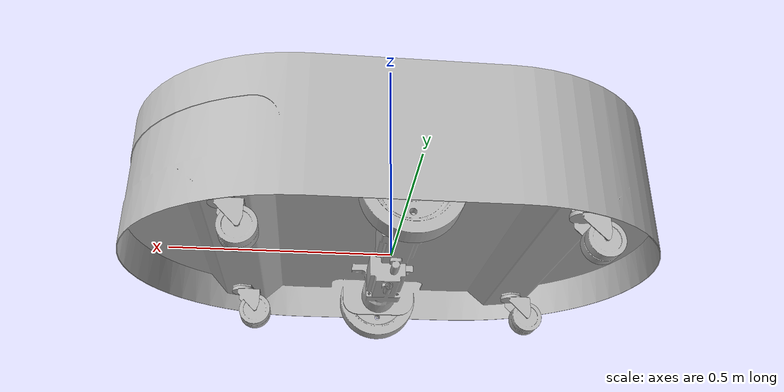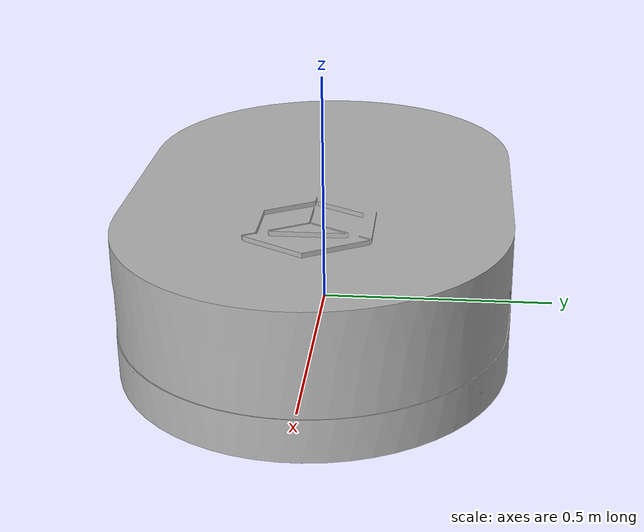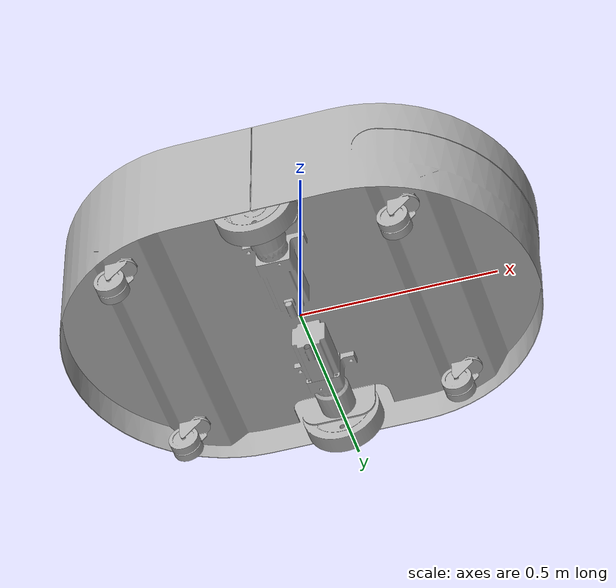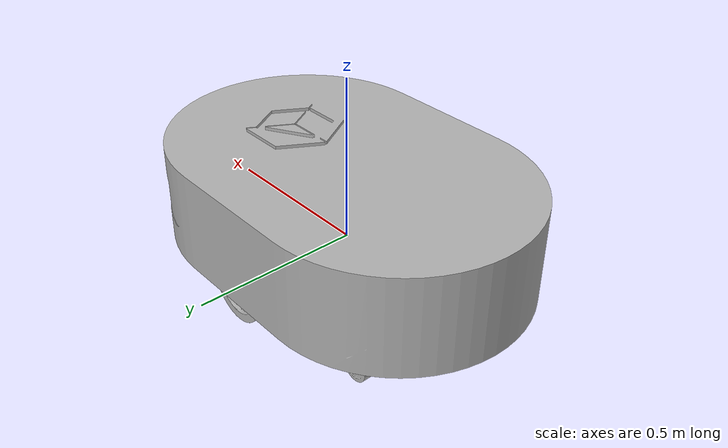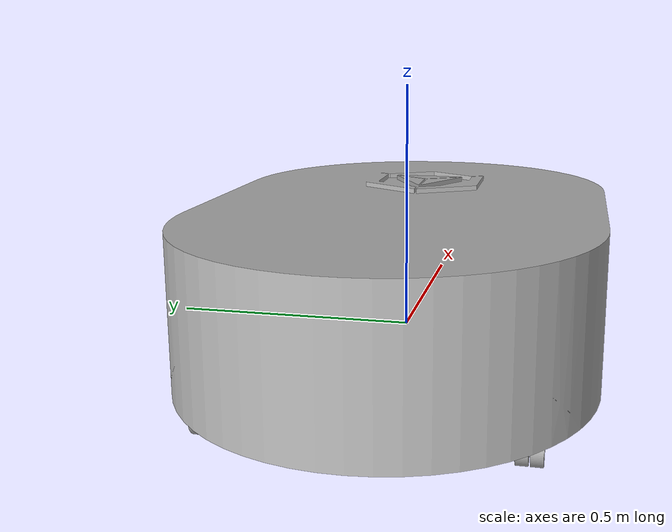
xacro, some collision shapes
<?xml version="1.0" ?>
<robot name="agv" xmlns:xacro="http://www.ros.org/wiki/xacro">

<xacro:include filename="$(find agv_description)/urdf/materials.xacro" />
<xacro:include filename="$(find agv_description)/urdf/agv.trans" />
<xacro:include filename="$(find agv_description)/urdf/agv.gazebo" />
<link name="base_link">
  <inertial>
    <origin rpy="0 0 0" xyz="0.0009499272030577544 1.80565172797742e-05 0.08730255948503818"/>
    <mass value="97.11796718956701"/>
    <inertia ixx="6.13306" ixy="0.000761" ixz="-0.088939" iyy="8.865985" iyz="-2.3e-05" izz="12.779689"/>
  </inertial>
  <visual>
    <origin rpy="0 0 0" xyz="0 0 0"/>
    <geometry>
      <mesh filename="package://agv_description/meshes/base_link.stl" scale="0.001 0.001 0.001"/>
    </geometry>
    <material name="silver"/>
  </visual>
  <collision>
    <origin rpy="0 0 0" xyz="0 0 0"/>
    <geometry>
      <mesh filename="package://agv_description/meshes/base_link.stl" scale="0.001 0.001 0.001"/>
    </geometry>
  </collision>
</link>

<link name="sol_onteker_1">
  <inertial>
    <origin rpy="0 0 0" xyz="-2.391121394773599e-07 -0.025499708971287893 -1.6736612096224235e-14"/>
    <mass value="1.375066553593829"/>
    <inertia ixx="0.000807" ixy="-0.0" ixz="-0.0" iyy="0.001095" iyz="-0.0" izz="0.000807"/>
  </inertial>
  <visual>
    <origin rpy="0 0 0" xyz="-0.32154 -0.308893 0.0615"/>
    <geometry>
      <mesh filename="package://agv_description/meshes/sol_onteker_1.dae" scale="0.001 0.001 0.001"/>
    </geometry>
    <material name="silver"/>
  </visual>
  <collision>
    <origin rpy="0 0 0" xyz="-0.32154 -0.308893 0.0615"/>
    <geometry>
      <mesh filename="package://agv_description/meshes/sol_onteker_1.dae" scale="0.001 0.001 0.001"/>
    </geometry>
  </collision>
</link>

<link name="sol_onbaglanti_1">
  <inertial>
    <origin rpy="0 0 0" xyz="-0.00779122429877982 2.91822961351329e-07 -0.011392326562195292"/>
    <mass value="0.2583100625424449"/>
    <inertia ixx="0.000128" ixy="-0.0" ixz="-3e-05" iyy="0.000127" iyz="0.0" izz="0.000165"/>
  </inertial>
  <visual>
    <origin rpy="0 0 0" xyz="-0.355805 -0.283393 0.0025"/>
    <geometry>
      <mesh filename="package://agv_description/meshes/sol_onbaglanti_1.dae" scale="0.001 0.001 0.001"/>
    </geometry>
    <material name="silver"/>
  </visual>
  <collision>
    <origin rpy="0 0 0" xyz="-0.355805 -0.283393 0.0025"/>
    <geometry>
      <mesh filename="package://agv_description/meshes/sol_onbaglanti_1.dae" scale="0.001 0.001 0.001"/>
    </geometry>
  </collision>
</link>

<link name="sol_arkateker_1">
  <inertial>
    <origin rpy="0 0 0" xyz="-2.389021993010054e-07 -0.0254999749793276 -1.659783421814609e-14"/>
    <mass value="1.3750665535938387"/>
    <inertia ixx="0.000807" ixy="0.0" ixz="-0.0" iyy="0.001095" iyz="0.0" izz="0.000807"/>
  </inertial>
  <visual>
    <origin rpy="0 0 0" xyz="0.38846 -0.308876 0.0615"/>
    <geometry>
      <mesh filename="package://agv_description/meshes/sol_arkateker_1.dae" scale="0.001 0.001 0.001"/>
    </geometry>
    <material name="silver"/>
  </visual>
  <collision>
    <origin rpy="0 0 0" xyz="0.38846 -0.308876 0.0615"/>
    <geometry>
      <mesh filename="package://agv_description/meshes/sol_arkateker_1.dae" scale="0.001 0.001 0.001"/>
    </geometry>
  </collision>
</link>

<link name="sol_arkabaglanti_1">
  <inertial>
    <origin rpy="0 0 0" xyz="-0.007791226329828815 2.738226428933288e-08 -0.01139232980378832"/>
    <mass value="0.2583097173582451"/>
    <inertia ixx="0.000128" ixy="-0.0" ixz="-3e-05" iyy="0.000127" iyz="0.0" izz="0.000165"/>
  </inertial>
  <visual>
    <origin rpy="0 0 0" xyz="0.354195 -0.283376 0.0025"/>
    <geometry>
      <mesh filename="package://agv_description/meshes/sol_arkabaglanti_1.dae" scale="0.001 0.001 0.001"/>
    </geometry>
    <material name="silver"/>
  </visual>
  <collision>
    <origin rpy="0 0 0" xyz="0.354195 -0.283376 0.0025"/>
    <geometry>
      <mesh filename="package://agv_description/meshes/sol_arkabaglanti_1.dae" scale="0.001 0.001 0.001"/>
    </geometry>
  </collision>
</link>

<link name="sag_arkateker_1">
  <inertial>
    <origin rpy="0 0 0" xyz="-2.3890219924549427e-07 0.02550044296324616 -1.6729673202320328e-14"/>
    <mass value="1.3750665535938333"/>
    <inertia ixx="0.000807" ixy="0.0" ixz="-0.0" iyy="0.001095" iyz="0.0" izz="0.000807"/>
  </inertial>
  <visual>
    <origin rpy="0 0 0" xyz="0.38846 0.308911 0.0615"/>
    <geometry>
      <mesh filename="package://agv_description/meshes/sag_arkateker_1.dae" scale="0.001 0.001 0.001"/>
    </geometry>
    <material name="silver"/>
  </visual>
  <collision>
    <origin rpy="0 0 0" xyz="0.38846 0.308911 0.0615"/>
    <geometry>
      <mesh filename="package://agv_description/meshes/sag_arkateker_1.dae" scale="0.001 0.001 0.001"/>
    </geometry>
  </collision>
</link>

<link name="sag_arkabaglanti_1">
  <inertial>
    <origin rpy="0 0 0" xyz="-0.007791226347676039 4.453260670778114e-07 -0.011392329806064154"/>
    <mass value="0.25830971700592814"/>
    <inertia ixx="0.000128" ixy="-0.0" ixz="-3e-05" iyy="0.000127" iyz="0.0" izz="0.000165"/>
  </inertial>
  <visual>
    <origin rpy="0 0 0" xyz="0.354195 0.283411 0.0025"/>
    <geometry>
      <mesh filename="package://agv_description/meshes/sag_arkabaglanti_1.dae" scale="0.001 0.001 0.001"/>
    </geometry>
    <material name="silver"/>
  </visual>
  <collision>
    <origin rpy="0 0 0" xyz="0.354195 0.283411 0.0025"/>
    <geometry>
      <mesh filename="package://agv_description/meshes/sag_arkabaglanti_1.dae" scale="0.001 0.001 0.001"/>
    </geometry>
  </collision>
</link>

<link name="sag_onteker_1">
  <inertial>
    <origin rpy="0 0 0" xyz="-2.3911213858918146e-07 0.025499708971285895 -1.6882328868206287e-14"/>
    <mass value="1.375066553593832"/>
    <inertia ixx="0.000807" ixy="-0.0" ixz="-0.0" iyy="0.001095" iyz="-0.0" izz="0.000807"/>
  </inertial>
  <visual>
    <origin rpy="0 0 0" xyz="-0.32154 0.308893 0.0615"/>
    <geometry>
      <mesh filename="package://agv_description/meshes/sag_onteker_1.dae" scale="0.001 0.001 0.001"/>
    </geometry>
    <material name="silver"/>
  </visual>
  <collision>
    <origin rpy="0 0 0" xyz="-0.32154 0.308893 0.0615"/>
    <geometry>
      <mesh filename="package://agv_description/meshes/sag_onteker_1.dae" scale="0.001 0.001 0.001"/>
    </geometry>
  </collision>
</link>

<link name="sag_onbaglanti_1">
  <inertial>
    <origin rpy="0 0 0" xyz="-0.007791224298779764 -2.90234464406236e-07 -0.011392326562195779"/>
    <mass value="0.2583100625424476"/>
    <inertia ixx="0.000128" ixy="-0.0" ixz="-3e-05" iyy="0.000127" iyz="0.0" izz="0.000165"/>
  </inertial>
  <visual>
    <origin rpy="0 0 0" xyz="-0.355805 0.283393 0.0025"/>
    <geometry>
      <mesh filename="package://agv_description/meshes/sag_onbaglanti_1.dae" scale="0.001 0.001 0.001"/>
    </geometry>
    <material name="silver"/>
  </visual>
  <collision>
    <origin rpy="0 0 0" xyz="-0.355805 0.283393 0.0025"/>
    <geometry>
      <mesh filename="package://agv_description/meshes/sag_onbaglanti_1.dae" scale="0.001 0.001 0.001"/>
    </geometry>
  </collision>
</link>

<link name="sag_teker_1">
  <inertial>
    <origin rpy="0 0 0" xyz="-6.57278015069096e-06 0.005480805112943021 8.348877145181177e-16"/>
    <mass value="8.066726834559544"/>
    <inertia ixx="0.026464" ixy="1e-06" ixz="0.0" iyy="0.05025" iyz="0.0" izz="0.026463"/>
  </inertial>
  <visual>
    <origin rpy="0 0 0" xyz="-0.0 0.369751 -0.0"/>
    <geometry>
      <mesh filename="package://agv_description/meshes/sag_teker_1.dae" scale="0.001 0.001 0.001"/>
    </geometry>
    <material name="silver"/>
  </visual>
  <collision>
    <origin rpy="0 0 0" xyz="-0.0 0.369751 -0.0"/>
    <geometry>
      <mesh filename="package://agv_description/meshes/sag_teker_1.dae" scale="0.001 0.001 0.001"/>
    </geometry>
  </collision>
</link>

<link name="sol_teker_1">
  <inertial>
    <origin rpy="0 0 0" xyz="6.573038100725625e-06 -0.005480805112945519 1.1013412404281553e-15"/>
    <mass value="8.066726834559521"/>
    <inertia ixx="0.026464" ixy="1e-06" ixz="-0.0" iyy="0.05025" iyz="0.0" izz="0.026463"/>
  </inertial>
  <visual>
    <origin rpy="0 0 0" xyz="-0.0 -0.369751 -0.0"/>
    <geometry>
      <mesh filename="package://agv_description/meshes/sol_teker_1.dae" scale="0.001 0.001 0.001"/>
    </geometry>
    <material name="silver"/>
  </visual>
  <collision>
    <origin rpy="0 0 0" xyz="-0.0 -0.369751 -0.0"/>
    <geometry>
      <mesh filename="package://agv_description/meshes/sol_teker_1.dae" scale="0.001 0.001 0.001"/>
    </geometry>
  </collision>
</link>

<joint name="Rev11" type="continuous">
  <origin rpy="0 0 0" xyz="-0.034265 0.0255 -0.059"/>
  <parent link="sol_onbaglanti_1"/>
  <child link="sol_onteker_1"/>
  <axis xyz="0.0 -1.0 -0.0"/>
</joint>

<joint name="Rev12" type="continuous">
  <origin rpy="0 0 0" xyz="0.355805 0.283393 -0.0025"/>
  <parent link="base_link"/>
  <child link="sol_onbaglanti_1"/>
  <axis xyz="-0.0 0.0 1.0"/>
</joint>

<joint name="Rev13" type="continuous">
  <origin rpy="0 0 0" xyz="-0.034265 0.0255 -0.059"/>
  <parent link="sol_arkabaglanti_1"/>
  <child link="sol_arkateker_1"/>
  <axis xyz="0.0 -1.0 -0.0"/>
</joint>

<joint name="Rev14" type="continuous">
  <origin rpy="0 0 0" xyz="-0.354195 0.283376 -0.0025"/>
  <parent link="base_link"/>
  <child link="sol_arkabaglanti_1"/>
  <axis xyz="-0.0 0.0 1.0"/>
</joint>

<joint name="Rev15" type="continuous">
  <origin rpy="0 0 0" xyz="-0.034265 -0.0255 -0.059"/>
  <parent link="sag_arkabaglanti_1"/>
  <child link="sag_arkateker_1"/>
  <axis xyz="-0.0 1.0 0.0"/>
</joint>

<joint name="Rev16" type="continuous">
  <origin rpy="0 0 0" xyz="-0.354195 -0.283411 -0.0025"/>
  <parent link="base_link"/>
  <child link="sag_arkabaglanti_1"/>
  <axis xyz="-0.0 -0.0 1.0"/>
</joint>

<joint name="Rev17" type="continuous">
  <origin rpy="0 0 0" xyz="-0.034265 -0.0255 -0.059"/>
  <parent link="sag_onbaglanti_1"/>
  <child link="sag_onteker_1"/>
  <axis xyz="-0.0 1.0 0.0"/>
</joint>

<joint name="Rev18" type="continuous">
  <origin rpy="0 0 0" xyz="0.355805 -0.283393 -0.0025"/>
  <parent link="base_link"/>
  <child link="sag_onbaglanti_1"/>
  <axis xyz="-0.0 -0.0 1.0"/>
</joint>

<joint name="right_wheel_joint" type="continuous">
  <origin rpy="0 0 0" xyz="0.0 -0.369751 0.0"/>
  <parent link="base_link"/>
  <child link="sag_teker_1"/>
  <axis xyz="-0.0 1.0 0.0"/>
</joint>

<joint name="left_wheel_joint" type="continuous">
  <origin rpy="0 0 0" xyz="0.0 0.369751 0.0"/>
  <parent link="base_link"/>
  <child link="sol_teker_1"/>
  <axis xyz="0.0 1.0 0.0"/>
</joint>

<!-- Laser -->

<link name="hokuyo">
    <pose>0 0 0.1 0 0 0</pose>

    <inertial>
      <mass value="0.1"/>
      <origin xyz="0.0 0 0" rpy="0 0 0"/>
      <inertia
          ixx="0.0001" ixy="0" ixz="0"
          iyy="0.0001" iyz="0"
          izz="0.0001"
      />
    </inertial>

    <collision name='hokuyo_collision'>
      <origin xyz="0.0 0 0" rpy="0 0 0"/>
      <geometry>
        <box size="0.0 0.0 0.0"/>
      </geometry>
    </collision>

    <visual name='hokuyo_visual'>
      <origin xyz="0.0 0 0" rpy="0 0 0"/>
      <geometry>
         <mesh filename="package://agv_description/meshes/hokuyo.dae"/>
      </geometry>
    </visual>
  </link>

<joint type="fixed" name="hokuyo_joint">
    <origin xyz="0.66 0 0.12" rpy="3.14 0 0"/>
    <child link="hokuyo"/>
    <parent link="base_link"/>
  </joint>

</robot>

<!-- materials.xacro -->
<robot name="agv" xmlns:xacro="http://www.ros.org/wiki/xacro" >

<material name="silver">
  <color rgba="0.700 0.700 0.700 1.000"/>
</material>

</robot>
